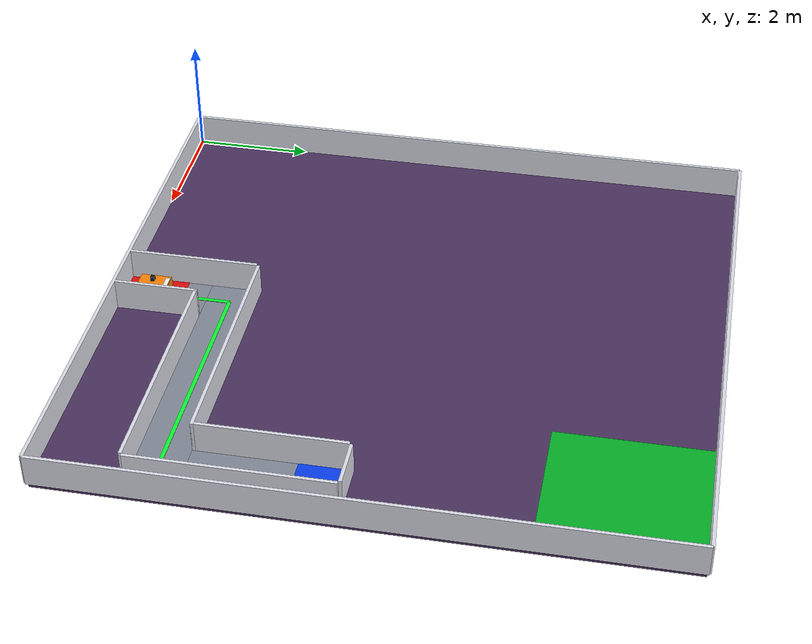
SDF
<?xml version='1.0' encoding='utf-8'?>
<sdf version="1.8">
  <world name="provincial_2025_training">
    <physics name="navigation" type="ignored">
      <max_step_size>0.004</max_step_size>
      <real_time_factor>1.0</real_time_factor>
    </physics>
    <gravity>0 0 -9.81</gravity>
    <plugin filename="ignition-gazebo-physics-system" name="ignition::gazebo::systems::Physics" />
    <plugin filename="ignition-gazebo-user-commands-system" name="ignition::gazebo::systems::UserCommands" />
    <plugin filename="ignition-gazebo-scene-broadcaster-system" name="ignition::gazebo::systems::SceneBroadcaster" />
    <plugin filename="ignition-gazebo-sensors-system" name="ignition::gazebo::systems::Sensors">
      <render_engine>ogre2</render_engine>
    </plugin>
    <scene>
      <ambient>0.65 0.65 0.65 1</ambient>
      <background>0.16 0.19 0.24 1</background>
      <shadows>false</shadows>
    </scene>
    <light name="sun" type="directional">
      <pose>0 0 12 0 0 0</pose>
      <diffuse>0.8 0.8 0.8 1</diffuse>
      <direction>-0.4 0.2 -0.9</direction>
      <cast_shadows>false</cast_shadows>
    </light>
    <model name="arena_floor">
      <static>true</static>
      <pose>4.7 5 -0.05 0 0 0</pose>
      <link name="link">
        <collision name="arena_floor_collision">
          <pose>0 0 0 0 0 0</pose>
          <geometry>
            <box>
              <size>9.4 10 0.1</size>
            </box>
          </geometry>
          <surface>
            <friction>
              <ode>
                <mu>0.0</mu>
                <mu2>0.0</mu2>
              </ode>
            </friction>
          </surface>
        </collision>
        <visual name="arena_floor">
          <pose>0 0 0 0 0 0</pose>
          <geometry>
            <box>
              <size>9.4 10 0.1</size>
            </box>
          </geometry>
          <material>
            <ambient>0.30 0.20 0.38 1</ambient>
            <diffuse>0.30 0.20 0.38 1</diffuse>
          </material>
        </visual>
      </link>
    </model>
    <model name="course_0">
      <static>true</static>
      <pose>4.7 1.1 0.002 0 0 0</pose>
      <link name="link">
        <visual name="course_0">
          <pose>0 0 0 0 0 0</pose>
          <geometry>
            <box>
              <size>0.8 2.2 0.004</size>
            </box>
          </geometry>
          <material>
            <ambient>0.52 0.55 0.60 1</ambient>
            <diffuse>0.52 0.55 0.60 1</diffuse>
          </material>
        </visual>
      </link>
    </model>
    <model name="course_1">
      <static>true</static>
      <pose>6.7 1.8 0.002 0 0 0</pose>
      <link name="link">
        <visual name="course_1">
          <pose>0 0 0 0 0 0</pose>
          <geometry>
            <box>
              <size>4.8 0.8 0.004</size>
            </box>
          </geometry>
          <material>
            <ambient>0.52 0.55 0.60 1</ambient>
            <diffuse>0.52 0.55 0.60 1</diffuse>
          </material>
        </visual>
      </link>
    </model>
    <model name="course_2">
      <static>true</static>
      <pose>8.7 3.025 0.002 0 0 0</pose>
      <link name="link">
        <visual name="course_2">
          <pose>0 0 0 0 0 0</pose>
          <geometry>
            <box>
              <size>0.8 3.25 0.004</size>
            </box>
          </geometry>
          <material>
            <ambient>0.52 0.55 0.60 1</ambient>
            <diffuse>0.52 0.55 0.60 1</diffuse>
          </material>
        </visual>
      </link>
    </model>
    <model name="start">
      <static>true</static>
      <pose>4.7 0.5 0.006 0 0 0</pose>
      <link name="link">
        <visual name="start">
          <pose>0 0 0 0 0 0</pose>
          <geometry>
            <box>
              <size>0.8 1.0 0.006</size>
            </box>
          </geometry>
          <material>
            <ambient>0.9 0.05 0.05 1</ambient>
            <diffuse>0.9 0.05 0.05 1</diffuse>
          </material>
        </visual>
      </link>
    </model>
    <model name="shooting_zone">
      <static>true</static>
      <pose>8.7 4.25 0.006 0 0 0</pose>
      <link name="link">
        <visual name="shooting_zone">
          <pose>0 0 0 0 0 0</pose>
          <geometry>
            <box>
              <size>0.8 0.8 0.006</size>
            </box>
          </geometry>
          <material>
            <ambient>0.04 0.25 0.95 1</ambient>
            <diffuse>0.04 0.25 0.95 1</diffuse>
          </material>
        </visual>
      </link>
    </model>
    <model name="target_zone">
      <static>true</static>
      <pose>8.15 8.75 0.006 0 0 0</pose>
      <link name="link">
        <visual name="target_zone">
          <pose>0 0 0 0 0 0</pose>
          <geometry>
            <box>
              <size>2.5 2.5 0.006</size>
            </box>
          </geometry>
          <material>
            <ambient>0.02 0.7 0.16 1</ambient>
            <diffuse>0.02 0.7 0.16 1</diffuse>
          </material>
        </visual>
      </link>
    </model>
    <model name="boundary_0">
      <static>true</static>
      <pose>4.7 -0.0275 0.27 0 0 0.0</pose>
      <link name="link">
        <collision name="boundary_0_collision">
          <pose>0 0 0 0 0 0</pose>
          <geometry>
            <box>
              <size>9.455 0.055 0.54</size>
            </box>
          </geometry>
          <surface>
            <friction>
              <ode>
                <mu>0.0</mu>
                <mu2>0.0</mu2>
              </ode>
            </friction>
          </surface>
        </collision>
        <visual name="boundary_0">
          <pose>0 0 0 0 0 0</pose>
          <geometry>
            <box>
              <size>9.455 0.055 0.54</size>
            </box>
          </geometry>
          <material>
            <ambient>0.88 0.89 0.93 1</ambient>
            <diffuse>0.88 0.89 0.93 1</diffuse>
          </material>
        </visual>
      </link>
    </model>
    <model name="boundary_1">
      <static>true</static>
      <pose>9.4275 5.0 0.27 0 0 1.5707963267948966</pose>
      <link name="link">
        <collision name="boundary_1_collision">
          <pose>0 0 0 0 0 0</pose>
          <geometry>
            <box>
              <size>10.055 0.055 0.54</size>
            </box>
          </geometry>
          <surface>
            <friction>
              <ode>
                <mu>0.0</mu>
                <mu2>0.0</mu2>
              </ode>
            </friction>
          </surface>
        </collision>
        <visual name="boundary_1">
          <pose>0 0 0 0 0 0</pose>
          <geometry>
            <box>
              <size>10.055 0.055 0.54</size>
            </box>
          </geometry>
          <material>
            <ambient>0.88 0.89 0.93 1</ambient>
            <diffuse>0.88 0.89 0.93 1</diffuse>
          </material>
        </visual>
      </link>
    </model>
    <model name="boundary_2">
      <static>true</static>
      <pose>4.7 10.0275 0.27 0 0 3.141592653589793</pose>
      <link name="link">
        <collision name="boundary_2_collision">
          <pose>0 0 0 0 0 0</pose>
          <geometry>
            <box>
              <size>9.455 0.055 0.54</size>
            </box>
          </geometry>
          <surface>
            <friction>
              <ode>
                <mu>0.0</mu>
                <mu2>0.0</mu2>
              </ode>
            </friction>
          </surface>
        </collision>
        <visual name="boundary_2">
          <pose>0 0 0 0 0 0</pose>
          <geometry>
            <box>
              <size>9.455 0.055 0.54</size>
            </box>
          </geometry>
          <material>
            <ambient>0.88 0.89 0.93 1</ambient>
            <diffuse>0.88 0.89 0.93 1</diffuse>
          </material>
        </visual>
      </link>
    </model>
    <model name="boundary_3">
      <static>true</static>
      <pose>-0.0275 5.0 0.27 0 0 -1.5707963267948966</pose>
      <link name="link">
        <collision name="boundary_3_collision">
          <pose>0 0 0 0 0 0</pose>
          <geometry>
            <box>
              <size>10.055 0.055 0.54</size>
            </box>
          </geometry>
          <surface>
            <friction>
              <ode>
                <mu>0.0</mu>
                <mu2>0.0</mu2>
              </ode>
            </friction>
          </surface>
        </collision>
        <visual name="boundary_3">
          <pose>0 0 0 0 0 0</pose>
          <geometry>
            <box>
              <size>10.055 0.055 0.54</size>
            </box>
          </geometry>
          <material>
            <ambient>0.88 0.89 0.93 1</ambient>
            <diffuse>0.88 0.89 0.93 1</diffuse>
          </material>
        </visual>
      </link>
    </model>
    <model name="boundary_4">
      <static>true</static>
      <pose>4.2725 1.1 0.27 0 0 1.5707963267948966</pose>
      <link name="link">
        <collision name="boundary_4_collision">
          <pose>0 0 0 0 0 0</pose>
          <geometry>
            <box>
              <size>2.2 0.055 0.54</size>
            </box>
          </geometry>
          <surface>
            <friction>
              <ode>
                <mu>0.0</mu>
                <mu2>0.0</mu2>
              </ode>
            </friction>
          </surface>
        </collision>
        <visual name="boundary_4">
          <pose>0 0 0 0 0 0</pose>
          <geometry>
            <box>
              <size>2.2 0.055 0.54</size>
            </box>
          </geometry>
          <material>
            <ambient>0.88 0.89 0.93 1</ambient>
            <diffuse>0.88 0.89 0.93 1</diffuse>
          </material>
        </visual>
      </link>
    </model>
    <model name="boundary_5">
      <static>true</static>
      <pose>5.1275 0.7 0.27 0 0 1.5707963267948966</pose>
      <link name="link">
        <collision name="boundary_5_collision">
          <pose>0 0 0 0 0 0</pose>
          <geometry>
            <box>
              <size>1.4 0.055 0.54</size>
            </box>
          </geometry>
          <surface>
            <friction>
              <ode>
                <mu>0.0</mu>
                <mu2>0.0</mu2>
              </ode>
            </friction>
          </surface>
        </collision>
        <visual name="boundary_5">
          <pose>0 0 0 0 0 0</pose>
          <geometry>
            <box>
              <size>1.4 0.055 0.54</size>
            </box>
          </geometry>
          <material>
            <ambient>0.88 0.89 0.93 1</ambient>
            <diffuse>0.88 0.89 0.93 1</diffuse>
          </material>
        </visual>
      </link>
    </model>
    <model name="boundary_6">
      <static>true</static>
      <pose>7.1 1.3725 0.27 0 0 0.0</pose>
      <link name="link">
        <collision name="boundary_6_collision">
          <pose>0 0 0 0 0 0</pose>
          <geometry>
            <box>
              <size>4.0 0.055 0.54</size>
            </box>
          </geometry>
          <surface>
            <friction>
              <ode>
                <mu>0.0</mu>
                <mu2>0.0</mu2>
              </ode>
            </friction>
          </surface>
        </collision>
        <visual name="boundary_6">
          <pose>0 0 0 0 0 0</pose>
          <geometry>
            <box>
              <size>4.0 0.055 0.54</size>
            </box>
          </geometry>
          <material>
            <ambient>0.88 0.89 0.93 1</ambient>
            <diffuse>0.88 0.89 0.93 1</diffuse>
          </material>
        </visual>
      </link>
    </model>
    <model name="boundary_7">
      <static>true</static>
      <pose>6.300000000000001 2.2275 0.27 0 0 0.0</pose>
      <link name="link">
        <collision name="boundary_7_collision">
          <pose>0 0 0 0 0 0</pose>
          <geometry>
            <box>
              <size>4.000000000000001 0.055 0.54</size>
            </box>
          </geometry>
          <surface>
            <friction>
              <ode>
                <mu>0.0</mu>
                <mu2>0.0</mu2>
              </ode>
            </friction>
          </surface>
        </collision>
        <visual name="boundary_7">
          <pose>0 0 0 0 0 0</pose>
          <geometry>
            <box>
              <size>4.000000000000001 0.055 0.54</size>
            </box>
          </geometry>
          <material>
            <ambient>0.88 0.89 0.93 1</ambient>
            <diffuse>0.88 0.89 0.93 1</diffuse>
          </material>
        </visual>
      </link>
    </model>
    <model name="boundary_8">
      <static>true</static>
      <pose>8.2725 3.4250000000000003 0.27 0 0 1.5707963267948966</pose>
      <link name="link">
        <collision name="boundary_8_collision">
          <pose>0 0 0 0 0 0</pose>
          <geometry>
            <box>
              <size>2.45 0.055 0.54</size>
            </box>
          </geometry>
          <surface>
            <friction>
              <ode>
                <mu>0.0</mu>
                <mu2>0.0</mu2>
              </ode>
            </friction>
          </surface>
        </collision>
        <visual name="boundary_8">
          <pose>0 0 0 0 0 0</pose>
          <geometry>
            <box>
              <size>2.45 0.055 0.54</size>
            </box>
          </geometry>
          <material>
            <ambient>0.88 0.89 0.93 1</ambient>
            <diffuse>0.88 0.89 0.93 1</diffuse>
          </material>
        </visual>
      </link>
    </model>
    <model name="boundary_9">
      <static>true</static>
      <pose>9.1275 3.0250000000000004 0.27 0 0 1.5707963267948966</pose>
      <link name="link">
        <collision name="boundary_9_collision">
          <pose>0 0 0 0 0 0</pose>
          <geometry>
            <box>
              <size>3.2500000000000004 0.055 0.54</size>
            </box>
          </geometry>
          <surface>
            <friction>
              <ode>
                <mu>0.0</mu>
                <mu2>0.0</mu2>
              </ode>
            </friction>
          </surface>
        </collision>
        <visual name="boundary_9">
          <pose>0 0 0 0 0 0</pose>
          <geometry>
            <box>
              <size>3.2500000000000004 0.055 0.54</size>
            </box>
          </geometry>
          <material>
            <ambient>0.88 0.89 0.93 1</ambient>
            <diffuse>0.88 0.89 0.93 1</diffuse>
          </material>
        </visual>
      </link>
    </model>
    <model name="boundary_10">
      <static>true</static>
      <pose>8.7 4.6775 0.27 0 0 0.0</pose>
      <link name="link">
        <collision name="boundary_10_collision">
          <pose>0 0 0 0 0 0</pose>
          <geometry>
            <box>
              <size>0.7999999999999989 0.055 0.54</size>
            </box>
          </geometry>
          <surface>
            <friction>
              <ode>
                <mu>0.0</mu>
                <mu2>0.0</mu2>
              </ode>
            </friction>
          </surface>
        </collision>
        <visual name="boundary_10">
          <pose>0 0 0 0 0 0</pose>
          <geometry>
            <box>
              <size>0.7999999999999989 0.055 0.54</size>
            </box>
          </geometry>
          <material>
            <ambient>0.88 0.89 0.93 1</ambient>
            <diffuse>0.88 0.89 0.93 1</diffuse>
          </material>
        </visual>
      </link>
    </model>
    <model name="route_0">
      <static>true</static>
      <pose>4.7 1.15 0.014 0 0 1.5707963267948966</pose>
      <link name="link">
        <visual name="route_0">
          <pose>0 0 0 0 0 0</pose>
          <geometry>
            <box>
              <size>1.3 0.065 0.008</size>
            </box>
          </geometry>
          <material>
            <ambient>0.05 1 0.2 1</ambient>
            <diffuse>0.05 1 0.2 1</diffuse>
          </material>
        </visual>
      </link>
    </model>
    <model name="route_1">
      <static>true</static>
      <pose>6.699999999999999 1.8 0.014 0 0 0.0</pose>
      <link name="link">
        <visual name="route_1">
          <pose>0 0 0 0 0 0</pose>
          <geometry>
            <box>
              <size>3.999999999999999 0.065 0.008</size>
            </box>
          </geometry>
          <material>
            <ambient>0.05 1 0.2 1</ambient>
            <diffuse>0.05 1 0.2 1</diffuse>
          </material>
        </visual>
      </link>
    </model>
    <model name="route_2">
      <static>true</static>
      <pose>8.7 3.025 0.014 0 0 1.5707963267948966</pose>
      <link name="link">
        <visual name="route_2">
          <pose>0 0 0 0 0 0</pose>
          <geometry>
            <box>
              <size>2.45 0.065 0.008</size>
            </box>
          </geometry>
          <material>
            <ambient>0.05 1 0.2 1</ambient>
            <diffuse>0.05 1 0.2 1</diffuse>
          </material>
        </visual>
      </link>
    </model>
    <model name="omni_robot">
      <pose>4.7 0.5 0.15 0 0 1.5707963268</pose>
      <link name="base_link">
        <gravity>false</gravity>
        <inertial>
          <mass>15</mass>
          <inertia>
            <ixx>0.27</ixx>
            <iyy>0.38</iyy>
            <izz>0.56</izz>
          </inertia>
        </inertial>
        <collision name="body_collision">
          <pose>0 0 0 0 0 0</pose>
          <geometry>
            <box>
              <size>0.52 0.42 0.18</size>
            </box>
          </geometry>
          <surface>
            <friction>
              <ode>
                <mu>0.0</mu>
                <mu2>0.0</mu2>
              </ode>
            </friction>
          </surface>
        </collision>
        <visual name="body">
          <pose>0 0 0 0 0 0</pose>
          <geometry>
            <box>
              <size>0.52 0.42 0.18</size>
            </box>
          </geometry>
          <material>
            <ambient>1 0.52 0.03 1</ambient>
            <diffuse>1 0.52 0.03 1</diffuse>
          </material>
        </visual>
        <visual name="front">
          <pose>0.22 0 0.105 0 0 0</pose>
          <geometry>
            <box>
              <size>0.07 0.28 0.025</size>
            </box>
          </geometry>
          <material>
            <ambient>0.95 0.98 1 1</ambient>
            <diffuse>0.95 0.98 1 1</diffuse>
          </material>
        </visual>
        <visual name="wheel_-0.17_-0.22">
          <pose>-0.17 -0.22 -0.055 1.5707963 0 0</pose>
          <geometry>
            <cylinder>
              <radius>0.085</radius>
              <length>0.045</length>
            </cylinder>
          </geometry>
          <material>
            <ambient>0.05 0.06 0.07 1</ambient>
            <diffuse>0.05 0.06 0.07 1</diffuse>
          </material>
        </visual>
        <visual name="wheel_-0.17_0.22">
          <pose>-0.17 0.22 -0.055 1.5707963 0 0</pose>
          <geometry>
            <cylinder>
              <radius>0.085</radius>
              <length>0.045</length>
            </cylinder>
          </geometry>
          <material>
            <ambient>0.05 0.06 0.07 1</ambient>
            <diffuse>0.05 0.06 0.07 1</diffuse>
          </material>
        </visual>
        <visual name="wheel_0.17_-0.22">
          <pose>0.17 -0.22 -0.055 1.5707963 0 0</pose>
          <geometry>
            <cylinder>
              <radius>0.085</radius>
              <length>0.045</length>
            </cylinder>
          </geometry>
          <material>
            <ambient>0.05 0.06 0.07 1</ambient>
            <diffuse>0.05 0.06 0.07 1</diffuse>
          </material>
        </visual>
        <visual name="wheel_0.17_0.22">
          <pose>0.17 0.22 -0.055 1.5707963 0 0</pose>
          <geometry>
            <cylinder>
              <radius>0.085</radius>
              <length>0.045</length>
            </cylinder>
          </geometry>
          <material>
            <ambient>0.05 0.06 0.07 1</ambient>
            <diffuse>0.05 0.06 0.07 1</diffuse>
          </material>
        </visual>
        <visual name="lidar_housing">
          <pose>0 0 0.19 0 0 0</pose>
          <geometry>
            <box>
              <size>0.07 0.07 0.08</size>
            </box>
          </geometry>
          <material>
            <ambient>0.08 0.1 0.12 1</ambient>
            <diffuse>0.08 0.1 0.12 1</diffuse>
          </material>
        </visual>
        <sensor name="lidar" type="gpu_lidar">
          <pose>0 0 0.25 0 0 0</pose>
          <topic>/scan</topic>
          <update_rate>10</update_rate>
          <always_on>true</always_on>
          <visualize>false</visualize>
          <lidar>
            <scan>
              <horizontal>
                <samples>360</samples>
                <resolution>1</resolution>
                <min_angle>-3.141592653589793</min_angle>
                <max_angle>3.141592653589793</max_angle>
              </horizontal>
            </scan>
            <range>
              <min>0.08</min>
              <max>16</max>
              <resolution>0.01</resolution>
            </range>
            <noise>
              <type>gaussian</type>
              <mean>0</mean>
              <stddev>0.01</stddev>
            </noise>
          </lidar>
        </sensor>
        <sensor name="lidar3d" type="gpu_lidar">
          <pose>0 0 0.25 0 0 0</pose>
          <topic>/simulation/lidar3d</topic>
          <update_rate>10</update_rate>
          <always_on>true</always_on>
          <visualize>false</visualize>
          <lidar>
            <scan>
              <horizontal>
                <samples>360</samples>
                <resolution>1</resolution>
                <min_angle>-3.141592653589793</min_angle>
                <max_angle>3.141592653589793</max_angle>
              </horizontal>
              <vertical>
                <samples>16</samples>
                <resolution>1</resolution>
                <min_angle>-0.12217304764</min_angle>
                <max_angle>0.90757121104</max_angle>
              </vertical>
            </scan>
            <range>
              <min>0.1</min>
              <max>16</max>
              <resolution>0.01</resolution>
            </range>
            <noise>
              <type>gaussian</type>
              <mean>0</mean>
              <stddev>0.01</stddev>
            </noise>
          </lidar>
        </sensor>
        <sensor name="imu3d" type="imu">
          <pose>0 0 0.25 0 0 0</pose>
          <topic>/simulation/imu3d</topic>
          <update_rate>250</update_rate>
          <always_on>true</always_on>
          <visualize>false</visualize>
          <imu>
            <angular_velocity>
              <x>
                <noise type="gaussian">
                  <mean>0</mean>
                  <stddev>0.0001</stddev>
                </noise>
              </x>
              <y>
                <noise type="gaussian">
                  <mean>0</mean>
                  <stddev>0.0001</stddev>
                </noise>
              </y>
              <z>
                <noise type="gaussian">
                  <mean>0</mean>
                  <stddev>0.0001</stddev>
                </noise>
              </z>
            </angular_velocity>
            <linear_acceleration>
              <x>
                <noise type="gaussian">
                  <mean>0</mean>
                  <stddev>0.001</stddev>
                </noise>
              </x>
              <y>
                <noise type="gaussian">
                  <mean>0</mean>
                  <stddev>0.001</stddev>
                </noise>
              </y>
              <z>
                <noise type="gaussian">
                  <mean>0</mean>
                  <stddev>0.001</stddev>
                </noise>
              </z>
            </linear_acceleration>
          </imu>
        </sensor>
      </link>
      <plugin filename="ignition-gazebo-velocity-control-system" name="ignition::gazebo::systems::VelocityControl">
        <topic>/model/omni_robot/cmd_vel</topic>
      </plugin>
      <plugin filename="ignition-gazebo-odometry-publisher-system" name="ignition::gazebo::systems::OdometryPublisher">
        <odom_frame>odom</odom_frame>
        <robot_base_frame>base_link</robot_base_frame>
        <odom_publish_frequency>50</odom_publish_frequency>
        <odom_topic>/gazebo/odometry</odom_topic>
        <dimensions>2</dimensions>
      </plugin>
      <plugin filename="libstage2_kinematic_imu.so" name="stage2::KinematicImu">
        <sensor name="imu3d" type="imu">
          <pose>0 0 0.25 0 0 0</pose>
          <topic>/simulation/imu3d</topic>
          <update_rate>250</update_rate>
          <always_on>true</always_on>
          <visualize>false</visualize>
          <imu>
            <angular_velocity>
              <x>
                <noise type="gaussian">
                  <mean>0</mean>
                  <stddev>0.0001</stddev>
                </noise>
              </x>
              <y>
                <noise type="gaussian">
                  <mean>0</mean>
                  <stddev>0.0001</stddev>
                </noise>
              </y>
              <z>
                <noise type="gaussian">
                  <mean>0</mean>
                  <stddev>0.0001</stddev>
                </noise>
              </z>
            </angular_velocity>
            <linear_acceleration>
              <x>
                <noise type="gaussian">
                  <mean>0</mean>
                  <stddev>0.001</stddev>
                </noise>
              </x>
              <y>
                <noise type="gaussian">
                  <mean>0</mean>
                  <stddev>0.001</stddev>
                </noise>
              </y>
              <z>
                <noise type="gaussian">
                  <mean>0</mean>
                  <stddev>0.001</stddev>
                </noise>
              </z>
            </linear_acceleration>
          </imu>
        </sensor>
      </plugin>
    </model>
  </world>
</sdf>
